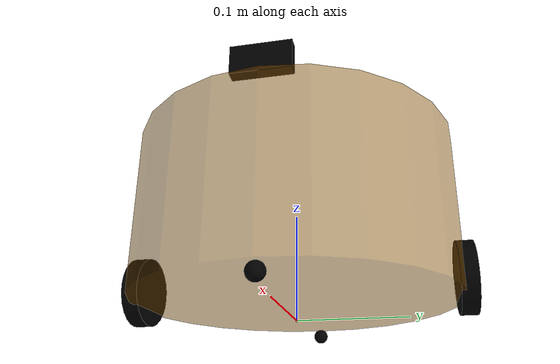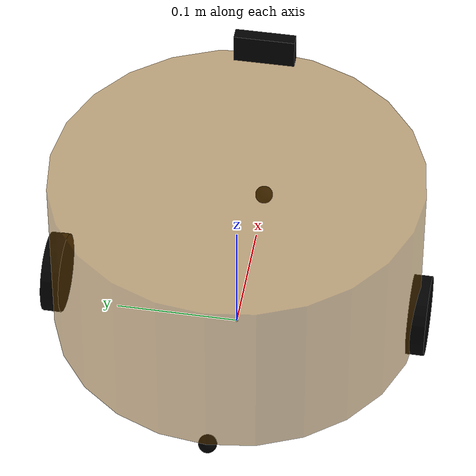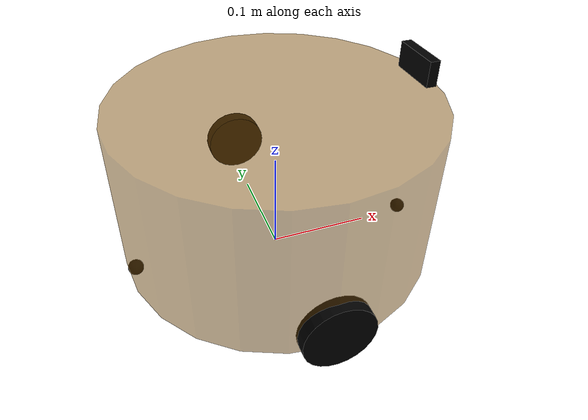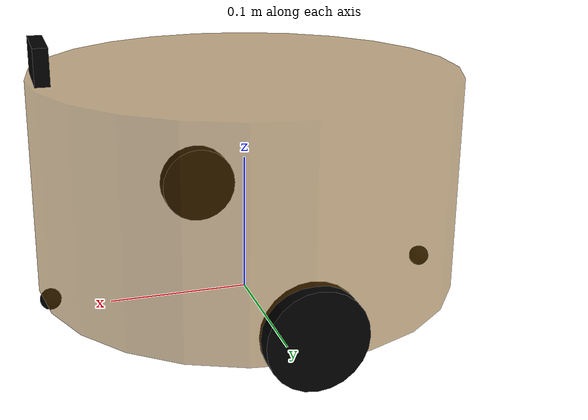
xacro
<robot name="my_car_camera" xmlns:xacro="http://wiki.ros.org/xacro">
    <xacro:include filename="head.xacro" />
    <xacro:include filename="base.xacro" />
    <xacro:include filename="camera.xacro" />

    <xacro:include filename="gazebo/move.xacro" />
    <xacro:include filename="gazebo/kinect.xacro" />
</robot>

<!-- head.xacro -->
<robot name="base" xmlns:xacro="http://wiki.ros.org/xacro">
    <!-- Macro for inertia matrix -->
    <xacro:macro name="sphere_inertial_matrix" params="m r">
        <inertial>
            <mass value="${m}" />
            <inertia ixx="${2*m*r*r/5}" ixy="0" ixz="0"
                iyy="${2*m*r*r/5}" iyz="0"
                izz="${2*m*r*r/5}" />
        </inertial>
    </xacro:macro>

    <xacro:macro name="cylinder_inertial_matrix" params="m r h">
        <inertial>
            <mass value="${m}" />
            <inertia ixx="${m*(3*r*r+h*h)/12}" ixy="0" ixz="0"
                iyy="${m*(3*r*r+h*h)/12}" iyz="0"
                izz="${m*r*r/2}" />
        </inertial>
    </xacro:macro>

    <xacro:macro name="Box_inertial_matrix" params="m l w h">
        <inertial>
            <mass value="${m}" />
            <inertia ixx="${m*(w*w + l*l)/12}" ixy="0" ixz="0"
                iyy="${m*(w*w + l*l)/12}" iyz="0"
                izz="${m*(w*w + h*h)/12}" />
        </inertial>
    </xacro:macro>
</robot>

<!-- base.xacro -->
<robot name="my_base" xmlns:xacro="http://www.ros.org/wiki/xacro">

    <xacro:property name="PI" value="3.1415926"/>

    <material name="black">
        <color rgba="0.0 0.0 0.0 1.0" />
    </material>

    <xacro:property name="base_footprint_radius" value="0.001" />
    <xacro:property name="base_link_radius" value="0.15" />
    <xacro:property name="base_link_length" value="0.15" />
    <xacro:property name="earth_space" value="0.015" />
    <xacro:property name="base_link_m" value="0.55" />

    <link name="base_footprint">
      <visual>
        <geometry>
          <sphere radius="${base_footprint_radius}" />
        </geometry>
      </visual>
    </link>

    <link name="base_link">
      <visual>
        <geometry>
          <cylinder radius="${base_link_radius}" length="${base_link_length}" />
        </geometry>
        <origin xyz="0 0 0" rpy="0 0 0" />
        <material name="yellow">
          <color rgba="0.5 0.3 0.0 0.5" />
        </material>
      </visual>
      <collision>
        <geometry>
          <cylinder radius="${base_link_radius}" length="${base_link_length}" />
        </geometry>
        <origin xyz="0 0 0" rpy="0 0 0" />
      </collision>
      <xacro:cylinder_inertial_matrix m="${base_link_m}" r="${base_link_radius}" h="${base_link_length}" />

    </link>

    <joint name="base_link2base_footprint" type="fixed">
      <parent link="base_footprint" />
      <child link="base_link" />
      <origin xyz="0 0 ${earth_space + base_link_length / 2 }" />
    </joint>
    <gazebo reference="base_link">
        <material>Gazebo/Yellow</material>
    </gazebo>

    <xacro:property name="wheel_radius" value="0.0325" />
    <xacro:property name="wheel_length" value="0.015" />
    <xacro:property name="wheel_m" value="0.05" />

    <xacro:macro name="add_wheels" params="name flag">
      <link name="${name}_wheel">
        <visual>
          <geometry>
            <cylinder radius="${wheel_radius}" length="${wheel_length}" />
          </geometry>
          <origin xyz="0.0 0.0 0.0" rpy="${PI / 2} 0.0 0.0" />
          <material name="black" />
        </visual>
        <collision>
          <geometry>
            <cylinder radius="${wheel_radius}" length="${wheel_length}" />
          </geometry>
          <origin xyz="0.0 0.0 0.0" rpy="${PI / 2} 0.0 0.0" />
        </collision>
        <xacro:cylinder_inertial_matrix m="${wheel_m}" r="${wheel_radius}" h="${wheel_length}" />

      </link>

      <joint name="${name}_wheel2base_link" type="continuous">
        <parent link="base_link" />
        <child link="${name}_wheel" />
        <origin xyz="0 ${flag * base_link_radius} ${-(earth_space + base_link_length / 2 - wheel_radius) }" />
        <axis xyz="0 1 0" />
      </joint>

      <gazebo reference="${name}_wheel">
        <material>Gazebo/Red</material>
      </gazebo>

    </xacro:macro>
    <xacro:add_wheels name="left" flag="1" />
    <xacro:add_wheels name="right" flag="-1" />

    <xacro:property name="support_wheel_radius" value="0.0075" />
    <xacro:property name="support_wheel_m" value="0.03" />

    <xacro:macro name="add_support_wheel" params="name flag" >
      <link name="${name}_wheel">
        <visual>
            <geometry>
                <sphere radius="${support_wheel_radius}" />
            </geometry>
            <origin xyz="0 0 0" rpy="0 0 0" />
            <material name="black" />
        </visual>
        <collision>
            <geometry>
                <sphere radius="${support_wheel_radius}" />
            </geometry>
            <origin xyz="0 0 0" rpy="0 0 0" />
        </collision>
        <xacro:sphere_inertial_matrix m="${support_wheel_m}" r="${support_wheel_radius}" />
      </link>

      <joint name="${name}_wheel2base_link" type="continuous">
          <parent link="base_link" />
          <child link="${name}_wheel" />
          <origin xyz="${flag * (base_link_radius - support_wheel_radius)} 0 ${-(base_link_length / 2 + earth_space / 2)}" />
          <axis xyz="1 1 1" />
      </joint>
      <gazebo reference="${name}_wheel">
        <material>Gazebo/Red</material>
      </gazebo>
    </xacro:macro>

    <xacro:add_support_wheel name="front" flag="1" />
    <xacro:add_support_wheel name="back" flag="-1" />

</robot>

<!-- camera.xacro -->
<robot name="my_camera" xmlns:xacro="http://wiki.ros.org/xacro">

    <xacro:property name="camera_length" value="0.01" />
    <xacro:property name="camera_width" value="0.05" />
    <xacro:property name="camera_height" value="0.025" />
    <xacro:property name="camera_x" value="0.14" />
    <xacro:property name="camera_y" value="0.0" />
    <xacro:property name="camera_z" value="${base_link_length / 2 + camera_height / 2}" />

    <xacro:property name="camera_m" value="0.02" />

    <link name="camera">
        <visual>
            <geometry>
                <box size="${camera_length} ${camera_width} ${camera_height}" />
            </geometry>
            <origin xyz="0.0 0.0 0.0" rpy="0.0 0.0 0.0" />
            <material name="black" />
        </visual>
        <collision>
            <geometry>
                <box size="${camera_length} ${camera_width} ${camera_height}" />
            </geometry>
            <origin xyz="0.0 0.0 0.0" rpy="0.0 0.0 0.0" />
        </collision>
        <xacro:Box_inertial_matrix m="${camera_m}" l="${camera_length}" w="${camera_width}" h="${camera_height}" />
    </link>

    <joint name="camera2base_link" type="fixed">
        <parent link="base_link" />
        <child link="camera" />
        <origin xyz="${camera_x} ${camera_y} ${camera_z}" rpy="0.0 0.0 0.0"/>
    </joint>
    <gazebo reference="camera">
        <material>Gazebo/Blue</material>
    </gazebo>
</robot>
